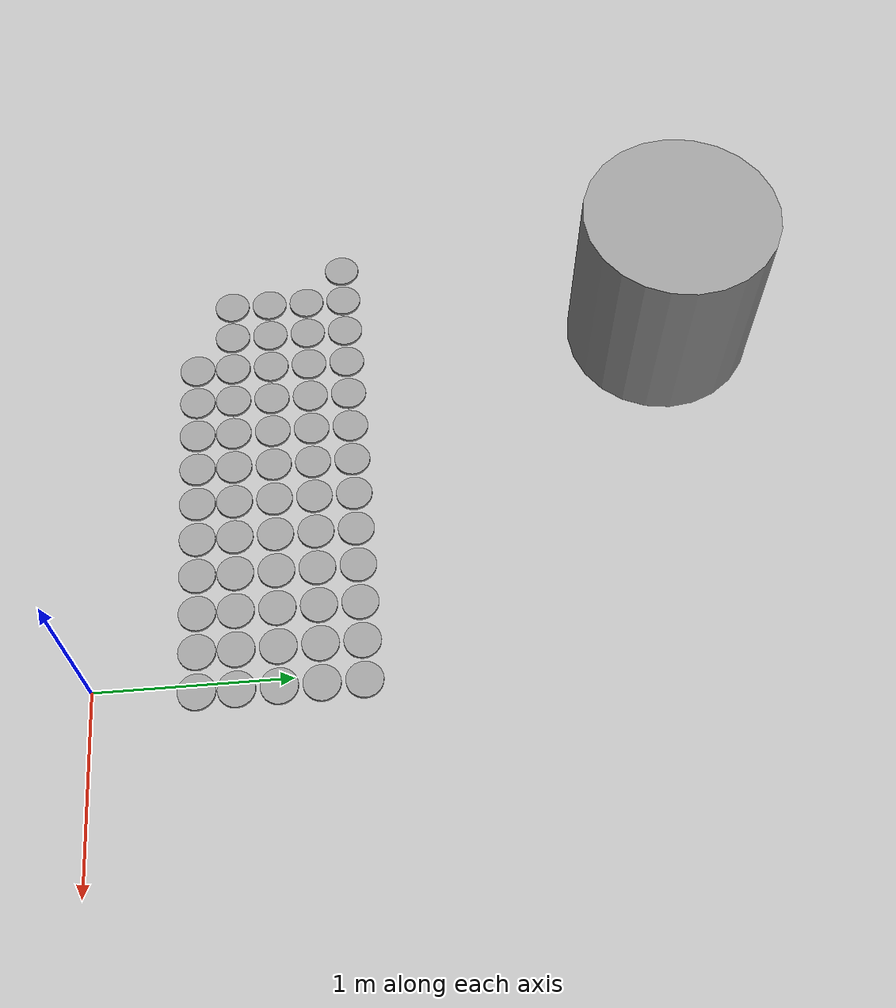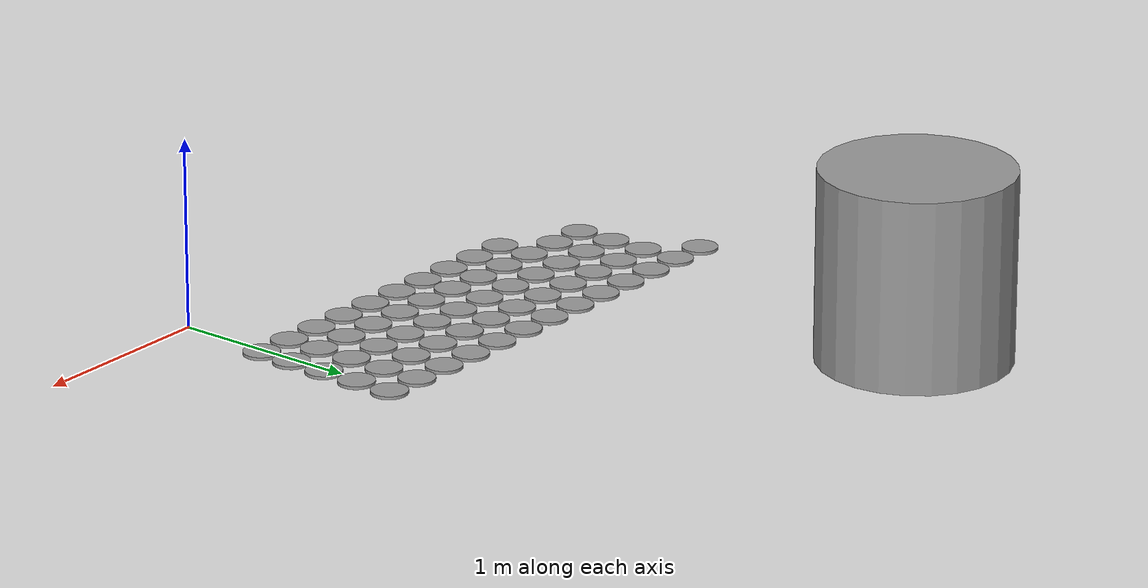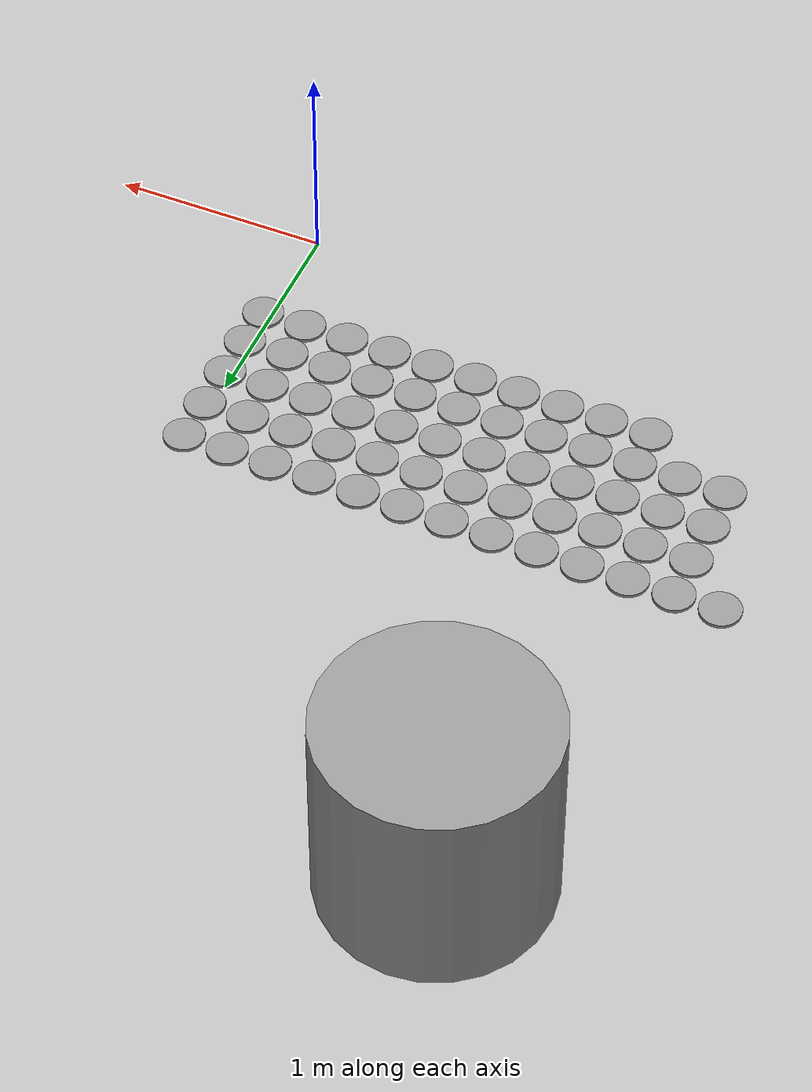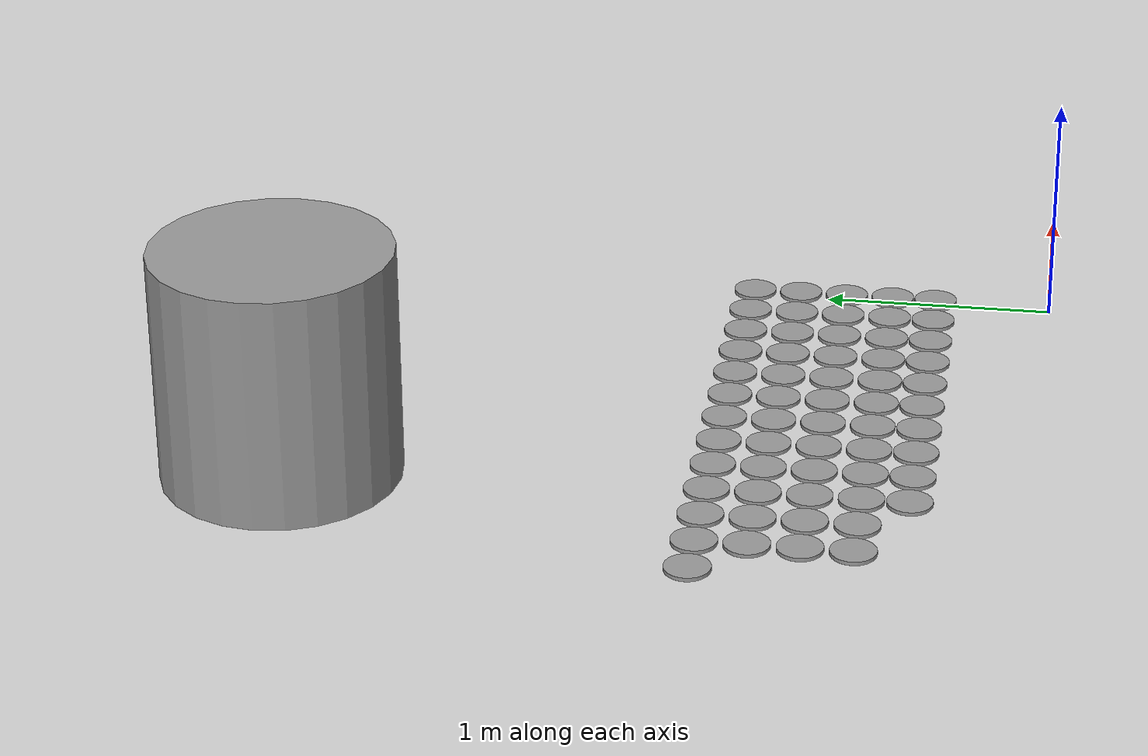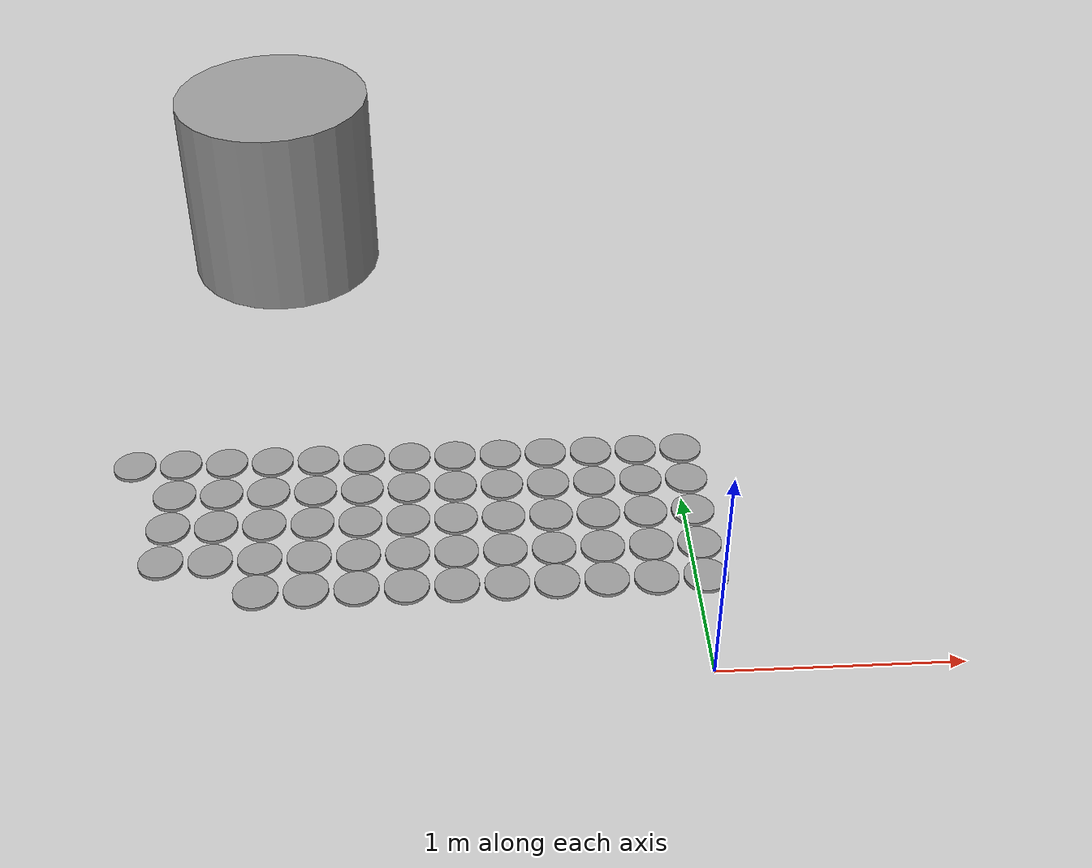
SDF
<sdf version="1.6">
 <world name="default">
  <model name="unit_cylinder_clone_64">
   <pose>-2.48 1.34 0.008117 0 -0 0</pose>
   <link name="link">
    <inertial>
     <mass>1</mass>
     <inertia><ixx>0.145833</ixx><ixy>0</ixy><ixz>0</ixz><iyy>0.145833</iyy><iyz>0</iyz><izz>0.125</izz></inertia>
    </inertial>
    <collision name="collision">
     <geometry><cylinder><radius>0.0950718</radius><length>0.0162339</length></cylinder></geometry>
     <max_contacts>5</max_contacts>
    </collision>
    <visual name="visual">
     <geometry><cylinder><radius>0.0950718</radius><length>0.0162339</length></cylinder></geometry>
     <material>
      <script><name>Gazebo/Grey</name><uri>file://media/materials/scripts/gazebo.material</uri></script>
     </material>
    </visual>
   </link>
  </model>
  <model name="unit_cylinder_clone_66">
   <pose>-2.27 0.71 0.008117 0 -0 0</pose>
   <link name="link">
    <inertial>
     <mass>1</mass>
     <inertia><ixx>0.145833</ixx><ixy>0</ixy><ixz>0</ixz><iyy>0.145833</iyy><iyz>0</iyz><izz>0.125</izz></inertia>
    </inertial>
    <collision name="collision">
     <geometry><cylinder><radius>0.0950718</radius><length>0.0162339</length></cylinder></geometry>
     <max_contacts>5</max_contacts>
    </collision>
    <visual name="visual">
     <geometry><cylinder><radius>0.0950718</radius><length>0.0162339</length></cylinder></geometry>
     <material>
      <script><name>Gazebo/Grey</name><uri>file://media/materials/scripts/gazebo.material</uri></script>
     </material>
    </visual>
   </link>
  </model>
  <model name="unit_cylinder_clone_67">
   <pose>-2.27 0.92 0.008117 0 -0 0</pose>
   <link name="link">
    <inertial>
     <mass>1</mass>
     <inertia><ixx>0.145833</ixx><ixy>0</ixy><ixz>0</ixz><iyy>0.145833</iyy><iyz>0</iyz><izz>0.125</izz></inertia>
    </inertial>
    <collision name="collision">
     <geometry><cylinder><radius>0.0950718</radius><length>0.0162339</length></cylinder></geometry>
     <max_contacts>5</max_contacts>
    </collision>
    <visual name="visual">
     <geometry><cylinder><radius>0.0950718</radius><length>0.0162339</length></cylinder></geometry>
     <material>
      <script><name>Gazebo/Grey</name><uri>file://media/materials/scripts/gazebo.material</uri></script>
     </material>
    </visual>
   </link>
  </model>
  <model name="unit_cylinder_clone_68">
   <pose>-2.27 1.13 0.008117 0 -0 0</pose>
   <link name="link">
    <inertial>
     <mass>1</mass>
     <inertia><ixx>0.145833</ixx><ixy>0</ixy><ixz>0</ixz><iyy>0.145833</iyy><iyz>0</iyz><izz>0.125</izz></inertia>
    </inertial>
    <collision name="collision">
     <geometry><cylinder><radius>0.0950718</radius><length>0.0162339</length></cylinder></geometry>
     <max_contacts>5</max_contacts>
    </collision>
    <visual name="visual">
     <geometry><cylinder><radius>0.0950718</radius><length>0.0162339</length></cylinder></geometry>
     <material>
      <script><name>Gazebo/Grey</name><uri>file://media/materials/scripts/gazebo.material</uri></script>
     </material>
    </visual>
   </link>
  </model>
  <model name="unit_cylinder_clone_69">
   <pose>-2.27 1.34 0.008117 0 -0 0</pose>
   <link name="link">
    <inertial>
     <mass>1</mass>
     <inertia><ixx>0.145833</ixx><ixy>0</ixy><ixz>0</ixz><iyy>0.145833</iyy><iyz>0</iyz><izz>0.125</izz></inertia>
    </inertial>
    <collision name="collision">
     <geometry><cylinder><radius>0.0950718</radius><length>0.0162339</length></cylinder></geometry>
     <max_contacts>5</max_contacts>
    </collision>
    <visual name="visual">
     <geometry><cylinder><radius>0.0950718</radius><length>0.0162339</length></cylinder></geometry>
     <material>
      <script><name>Gazebo/Grey</name><uri>file://media/materials/scripts/gazebo.material</uri></script>
     </material>
    </visual>
   </link>
  </model>
  <model name="unit_cylinder_clone_71">
   <pose>-2.06 0.71 0.008117 0 -0 0</pose>
   <link name="link">
    <inertial>
     <mass>1</mass>
     <inertia><ixx>0.145833</ixx><ixy>0</ixy><ixz>0</ixz><iyy>0.145833</iyy><iyz>0</iyz><izz>0.125</izz></inertia>
    </inertial>
    <collision name="collision">
     <geometry><cylinder><radius>0.0950718</radius><length>0.0162339</length></cylinder></geometry>
     <max_contacts>5</max_contacts>
    </collision>
    <visual name="visual">
     <geometry><cylinder><radius>0.0950718</radius><length>0.0162339</length></cylinder></geometry>
     <material>
      <script><name>Gazebo/Grey</name><uri>file://media/materials/scripts/gazebo.material</uri></script>
     </material>
    </visual>
   </link>
  </model>
  <model name="unit_cylinder_clone_72">
   <pose>-2.06 0.92 0.008117 0 -0 0</pose>
   <link name="link">
    <inertial>
     <mass>1</mass>
     <inertia><ixx>0.145833</ixx><ixy>0</ixy><ixz>0</ixz><iyy>0.145833</iyy><iyz>0</iyz><izz>0.125</izz></inertia>
    </inertial>
    <collision name="collision">
     <geometry><cylinder><radius>0.0950718</radius><length>0.0162339</length></cylinder></geometry>
     <max_contacts>5</max_contacts>
    </collision>
    <visual name="visual">
     <geometry><cylinder><radius>0.0950718</radius><length>0.0162339</length></cylinder></geometry>
     <material>
      <script><name>Gazebo/Grey</name><uri>file://media/materials/scripts/gazebo.material</uri></script>
     </material>
    </visual>
   </link>
  </model>
  <model name="unit_cylinder_clone_73">
   <pose>-2.06 1.13 0.008117 0 -0 0</pose>
   <link name="link">
    <inertial>
     <mass>1</mass>
     <inertia><ixx>0.145833</ixx><ixy>0</ixy><ixz>0</ixz><iyy>0.145833</iyy><iyz>0</iyz><izz>0.125</izz></inertia>
    </inertial>
    <collision name="collision">
     <geometry><cylinder><radius>0.0950718</radius><length>0.0162339</length></cylinder></geometry>
     <max_contacts>5</max_contacts>
    </collision>
    <visual name="visual">
     <geometry><cylinder><radius>0.0950718</radius><length>0.0162339</length></cylinder></geometry>
     <material>
      <script><name>Gazebo/Grey</name><uri>file://media/materials/scripts/gazebo.material</uri></script>
     </material>
    </visual>
   </link>
  </model>
  <model name="unit_cylinder_clone_74">
   <pose>-2.06 1.34 0.008117 0 -0 0</pose>
   <link name="link">
    <inertial>
     <mass>1</mass>
     <inertia><ixx>0.145833</ixx><ixy>0</ixy><ixz>0</ixz><iyy>0.145833</iyy><iyz>0</iyz><izz>0.125</izz></inertia>
    </inertial>
    <collision name="collision">
     <geometry><cylinder><radius>0.0950718</radius><length>0.0162339</length></cylinder></geometry>
     <max_contacts>5</max_contacts>
    </collision>
    <visual name="visual">
     <geometry><cylinder><radius>0.0950718</radius><length>0.0162339</length></cylinder></geometry>
     <material>
      <script><name>Gazebo/Grey</name><uri>file://media/materials/scripts/gazebo.material</uri></script>
     </material>
    </visual>
   </link>
  </model>
  <model name="unit_cylinder_clone_75">
   <pose>-1.85 0.515077 0.008117 0 -0 0</pose>
   <link name="link">
    <inertial>
     <mass>1</mass>
     <inertia><ixx>0.145833</ixx><ixy>0</ixy><ixz>0</ixz><iyy>0.145833</iyy><iyz>0</iyz><izz>0.125</izz></inertia>
    </inertial>
    <collision name="collision">
     <geometry><cylinder><radius>0.0950718</radius><length>0.0162339</length></cylinder></geometry>
     <max_contacts>5</max_contacts>
    </collision>
    <visual name="visual">
     <geometry><cylinder><radius>0.0950718</radius><length>0.0162339</length></cylinder></geometry>
     <material>
      <script><name>Gazebo/Grey</name><uri>file://media/materials/scripts/gazebo.material</uri></script>
     </material>
    </visual>
   </link>
  </model>
  <model name="unit_cylinder_clone_76">
   <pose>-1.85 0.71 0.008117 0 -0 0</pose>
   <link name="link">
    <inertial>
     <mass>1</mass>
     <inertia><ixx>0.145833</ixx><ixy>0</ixy><ixz>0</ixz><iyy>0.145833</iyy><iyz>0</iyz><izz>0.125</izz></inertia>
    </inertial>
    <collision name="collision">
     <geometry><cylinder><radius>0.0950718</radius><length>0.0162339</length></cylinder></geometry>
     <max_contacts>5</max_contacts>
    </collision>
    <visual name="visual">
     <geometry><cylinder><radius>0.0950718</radius><length>0.0162339</length></cylinder></geometry>
     <material>
      <script><name>Gazebo/Grey</name><uri>file://media/materials/scripts/gazebo.material</uri></script>
     </material>
    </visual>
   </link>
  </model>
  <model name="unit_cylinder_clone_77">
   <pose>-1.85 0.92 0.008117 0 -0 0</pose>
   <link name="link">
    <inertial>
     <mass>1</mass>
     <inertia><ixx>0.145833</ixx><ixy>0</ixy><ixz>0</ixz><iyy>0.145833</iyy><iyz>0</iyz><izz>0.125</izz></inertia>
    </inertial>
    <collision name="collision">
     <geometry><cylinder><radius>0.0950718</radius><length>0.0162339</length></cylinder></geometry>
     <max_contacts>5</max_contacts>
    </collision>
    <visual name="visual">
     <geometry><cylinder><radius>0.0950718</radius><length>0.0162339</length></cylinder></geometry>
     <material>
      <script><name>Gazebo/Grey</name><uri>file://media/materials/scripts/gazebo.material</uri></script>
     </material>
    </visual>
   </link>
  </model>
  <model name="unit_cylinder_clone_78">
   <pose>-1.85 1.13 0.008117 0 -0 0</pose>
   <link name="link">
    <inertial>
     <mass>1</mass>
     <inertia><ixx>0.145833</ixx><ixy>0</ixy><ixz>0</ixz><iyy>0.145833</iyy><iyz>0</iyz><izz>0.125</izz></inertia>
    </inertial>
    <collision name="collision">
     <geometry><cylinder><radius>0.0950718</radius><length>0.0162339</length></cylinder></geometry>
     <max_contacts>5</max_contacts>
    </collision>
    <visual name="visual">
     <geometry><cylinder><radius>0.0950718</radius><length>0.0162339</length></cylinder></geometry>
     <material>
      <script><name>Gazebo/Grey</name><uri>file://media/materials/scripts/gazebo.material</uri></script>
     </material>
    </visual>
   </link>
  </model>
  <model name="unit_cylinder_clone_79">
   <pose>-1.85 1.34 0.008117 0 -0 0</pose>
   <link name="link">
    <inertial>
     <mass>1</mass>
     <inertia><ixx>0.145833</ixx><ixy>0</ixy><ixz>0</ixz><iyy>0.145833</iyy><iyz>0</iyz><izz>0.125</izz></inertia>
    </inertial>
    <collision name="collision">
     <geometry><cylinder><radius>0.0950718</radius><length>0.0162339</length></cylinder></geometry>
     <max_contacts>5</max_contacts>
    </collision>
    <visual name="visual">
     <geometry><cylinder><radius>0.0950718</radius><length>0.0162339</length></cylinder></geometry>
     <material>
      <script><name>Gazebo/Grey</name><uri>file://media/materials/scripts/gazebo.material</uri></script>
     </material>
    </visual>
   </link>
  </model>
  <model name="unit_cylinder_clone_80">
   <pose>-1.64 0.515077 0.008117 0 -0 0</pose>
   <link name="link">
    <inertial>
     <mass>1</mass>
     <inertia><ixx>0.145833</ixx><ixy>0</ixy><ixz>0</ixz><iyy>0.145833</iyy><iyz>0</iyz><izz>0.125</izz></inertia>
    </inertial>
    <collision name="collision">
     <geometry><cylinder><radius>0.0950718</radius><length>0.0162339</length></cylinder></geometry>
     <max_contacts>5</max_contacts>
    </collision>
    <visual name="visual">
     <geometry><cylinder><radius>0.0950718</radius><length>0.0162339</length></cylinder></geometry>
     <material>
      <script><name>Gazebo/Grey</name><uri>file://media/materials/scripts/gazebo.material</uri></script>
     </material>
    </visual>
   </link>
  </model>
  <model name="unit_cylinder_clone_81">
   <pose>-1.64 0.71 0.008117 0 -0 0</pose>
   <link name="link">
    <inertial>
     <mass>1</mass>
     <inertia><ixx>0.145833</ixx><ixy>0</ixy><ixz>0</ixz><iyy>0.145833</iyy><iyz>0</iyz><izz>0.125</izz></inertia>
    </inertial>
    <collision name="collision">
     <geometry><cylinder><radius>0.0950718</radius><length>0.0162339</length></cylinder></geometry>
     <max_contacts>5</max_contacts>
    </collision>
    <visual name="visual">
     <geometry><cylinder><radius>0.0950718</radius><length>0.0162339</length></cylinder></geometry>
     <material>
      <script><name>Gazebo/Grey</name><uri>file://media/materials/scripts/gazebo.material</uri></script>
     </material>
    </visual>
   </link>
  </model>
  <model name="unit_cylinder_clone_82">
   <pose>-1.64 0.92 0.008117 0 -0 0</pose>
   <link name="link">
    <inertial>
     <mass>1</mass>
     <inertia><ixx>0.145833</ixx><ixy>0</ixy><ixz>0</ixz><iyy>0.145833</iyy><iyz>0</iyz><izz>0.125</izz></inertia>
    </inertial>
    <collision name="collision">
     <geometry><cylinder><radius>0.0950718</radius><length>0.0162339</length></cylinder></geometry>
     <max_contacts>5</max_contacts>
    </collision>
    <visual name="visual">
     <geometry><cylinder><radius>0.0950718</radius><length>0.0162339</length></cylinder></geometry>
     <material>
      <script><name>Gazebo/Grey</name><uri>file://media/materials/scripts/gazebo.material</uri></script>
     </material>
    </visual>
   </link>
  </model>
  <model name="unit_cylinder_clone_83">
   <pose>-1.64 1.13 0.008117 0 -0 0</pose>
   <link name="link">
    <inertial>
     <mass>1</mass>
     <inertia><ixx>0.145833</ixx><ixy>0</ixy><ixz>0</ixz><iyy>0.145833</iyy><iyz>0</iyz><izz>0.125</izz></inertia>
    </inertial>
    <collision name="collision">
     <geometry><cylinder><radius>0.0950718</radius><length>0.0162339</length></cylinder></geometry>
     <max_contacts>5</max_contacts>
    </collision>
    <visual name="visual">
     <geometry><cylinder><radius>0.0950718</radius><length>0.0162339</length></cylinder></geometry>
     <material>
      <script><name>Gazebo/Grey</name><uri>file://media/materials/scripts/gazebo.material</uri></script>
     </material>
    </visual>
   </link>
  </model>
  <model name="unit_cylinder_clone_84">
   <pose>-1.64 1.34 0.008117 0 -0 0</pose>
   <link name="link">
    <inertial>
     <mass>1</mass>
     <inertia><ixx>0.145833</ixx><ixy>0</ixy><ixz>0</ixz><iyy>0.145833</iyy><iyz>0</iyz><izz>0.125</izz></inertia>
    </inertial>
    <collision name="collision">
     <geometry><cylinder><radius>0.0950718</radius><length>0.0162339</length></cylinder></geometry>
     <max_contacts>5</max_contacts>
    </collision>
    <visual name="visual">
     <geometry><cylinder><radius>0.0950718</radius><length>0.0162339</length></cylinder></geometry>
     <material>
      <script><name>Gazebo/Grey</name><uri>file://media/materials/scripts/gazebo.material</uri></script>
     </material>
    </visual>
   </link>
  </model>
  <model name="unit_cylinder_clone_85">
   <pose>-1.43 0.515077 0.008117 0 -0 0</pose>
   <link name="link">
    <inertial>
     <mass>1</mass>
     <inertia><ixx>0.145833</ixx><ixy>0</ixy><ixz>0</ixz><iyy>0.145833</iyy><iyz>0</iyz><izz>0.125</izz></inertia>
    </inertial>
    <collision name="collision">
     <geometry><cylinder><radius>0.0950718</radius><length>0.0162339</length></cylinder></geometry>
     <max_contacts>5</max_contacts>
    </collision>
    <visual name="visual">
     <geometry><cylinder><radius>0.0950718</radius><length>0.0162339</length></cylinder></geometry>
     <material>
      <script><name>Gazebo/Grey</name><uri>file://media/materials/scripts/gazebo.material</uri></script>
     </material>
    </visual>
   </link>
  </model>
  <model name="unit_cylinder_clone_86">
   <pose>-1.43 0.71 0.008117 0 -0 0</pose>
   <link name="link">
    <inertial>
     <mass>1</mass>
     <inertia><ixx>0.145833</ixx><ixy>0</ixy><ixz>0</ixz><iyy>0.145833</iyy><iyz>0</iyz><izz>0.125</izz></inertia>
    </inertial>
    <collision name="collision">
     <geometry><cylinder><radius>0.0950718</radius><length>0.0162339</length></cylinder></geometry>
     <max_contacts>5</max_contacts>
    </collision>
    <visual name="visual">
     <geometry><cylinder><radius>0.0950718</radius><length>0.0162339</length></cylinder></geometry>
     <material>
      <script><name>Gazebo/Grey</name><uri>file://media/materials/scripts/gazebo.material</uri></script>
     </material>
    </visual>
   </link>
  </model>
  <model name="unit_cylinder_clone_87">
   <pose>-1.43 0.92 0.008117 0 -0 0</pose>
   <link name="link">
    <inertial>
     <mass>1</mass>
     <inertia><ixx>0.145833</ixx><ixy>0</ixy><ixz>0</ixz><iyy>0.145833</iyy><iyz>0</iyz><izz>0.125</izz></inertia>
    </inertial>
    <collision name="collision">
     <geometry><cylinder><radius>0.0950718</radius><length>0.0162339</length></cylinder></geometry>
     <max_contacts>5</max_contacts>
    </collision>
    <visual name="visual">
     <geometry><cylinder><radius>0.0950718</radius><length>0.0162339</length></cylinder></geometry>
     <material>
      <script><name>Gazebo/Grey</name><uri>file://media/materials/scripts/gazebo.material</uri></script>
     </material>
    </visual>
   </link>
  </model>
  <model name="unit_cylinder_clone_88">
   <pose>-1.43 1.13 0.008117 0 -0 0</pose>
   <link name="link">
    <inertial>
     <mass>1</mass>
     <inertia><ixx>0.145833</ixx><ixy>0</ixy><ixz>0</ixz><iyy>0.145833</iyy><iyz>0</iyz><izz>0.125</izz></inertia>
    </inertial>
    <collision name="collision">
     <geometry><cylinder><radius>0.0950718</radius><length>0.0162339</length></cylinder></geometry>
     <max_contacts>5</max_contacts>
    </collision>
    <visual name="visual">
     <geometry><cylinder><radius>0.0950718</radius><length>0.0162339</length></cylinder></geometry>
     <material>
      <script><name>Gazebo/Grey</name><uri>file://media/materials/scripts/gazebo.material</uri></script>
     </material>
    </visual>
   </link>
  </model>
  <model name="unit_cylinder_clone_89">
   <pose>-1.43 1.34 0.008117 0 -0 0</pose>
   <link name="link">
    <inertial>
     <mass>1</mass>
     <inertia><ixx>0.145833</ixx><ixy>0</ixy><ixz>0</ixz><iyy>0.145833</iyy><iyz>0</iyz><izz>0.125</izz></inertia>
    </inertial>
    <collision name="collision">
     <geometry><cylinder><radius>0.0950718</radius><length>0.0162339</length></cylinder></geometry>
     <max_contacts>5</max_contacts>
    </collision>
    <visual name="visual">
     <geometry><cylinder><radius>0.0950718</radius><length>0.0162339</length></cylinder></geometry>
     <material>
      <script><name>Gazebo/Grey</name><uri>file://media/materials/scripts/gazebo.material</uri></script>
     </material>
    </visual>
   </link>
  </model>
  <model name="unit_cylinder_clone_90">
   <pose>-1.22 0.515077 0.008117 0 -0 0</pose>
   <link name="link">
    <inertial>
     <mass>1</mass>
     <inertia><ixx>0.145833</ixx><ixy>0</ixy><ixz>0</ixz><iyy>0.145833</iyy><iyz>0</iyz><izz>0.125</izz></inertia>
    </inertial>
    <collision name="collision">
     <geometry><cylinder><radius>0.0950718</radius><length>0.0162339</length></cylinder></geometry>
     <max_contacts>5</max_contacts>
    </collision>
    <visual name="visual">
     <geometry><cylinder><radius>0.0950718</radius><length>0.0162339</length></cylinder></geometry>
     <material>
      <script><name>Gazebo/Grey</name><uri>file://media/materials/scripts/gazebo.material</uri></script>
     </material>
    </visual>
   </link>
  </model>
  <model name="unit_cylinder_clone_91">
   <pose>-1.22 0.71 0.008117 0 -0 0</pose>
   <link name="link">
    <inertial>
     <mass>1</mass>
     <inertia><ixx>0.145833</ixx><ixy>0</ixy><ixz>0</ixz><iyy>0.145833</iyy><iyz>0</iyz><izz>0.125</izz></inertia>
    </inertial>
    <collision name="collision">
     <geometry><cylinder><radius>0.0950718</radius><length>0.0162339</length></cylinder></geometry>
     <max_contacts>5</max_contacts>
    </collision>
    <visual name="visual">
     <geometry><cylinder><radius>0.0950718</radius><length>0.0162339</length></cylinder></geometry>
     <material>
      <script><name>Gazebo/Grey</name><uri>file://media/materials/scripts/gazebo.material</uri></script>
     </material>
    </visual>
   </link>
  </model>
  <model name="unit_cylinder_clone_92">
   <pose>-1.22 0.92 0.008117 0 -0 0</pose>
   <link name="link">
    <inertial>
     <mass>1</mass>
     <inertia><ixx>0.145833</ixx><ixy>0</ixy><ixz>0</ixz><iyy>0.145833</iyy><iyz>0</iyz><izz>0.125</izz></inertia>
    </inertial>
    <collision name="collision">
     <geometry><cylinder><radius>0.0950718</radius><length>0.0162339</length></cylinder></geometry>
     <max_contacts>5</max_contacts>
    </collision>
    <visual name="visual">
     <geometry><cylinder><radius>0.0950718</radius><length>0.0162339</length></cylinder></geometry>
     <material>
      <script><name>Gazebo/Grey</name><uri>file://media/materials/scripts/gazebo.material</uri></script>
     </material>
    </visual>
   </link>
  </model>
  <model name="unit_cylinder_clone_93">
   <pose>-1.22 1.13 0.008117 0 -0 0</pose>
   <link name="link">
    <inertial>
     <mass>1</mass>
     <inertia><ixx>0.145833</ixx><ixy>0</ixy><ixz>0</ixz><iyy>0.145833</iyy><iyz>0</iyz><izz>0.125</izz></inertia>
    </inertial>
    <collision name="collision">
     <geometry><cylinder><radius>0.0950718</radius><length>0.0162339</length></cylinder></geometry>
     <max_contacts>5</max_contacts>
    </collision>
    <visual name="visual">
     <geometry><cylinder><radius>0.0950718</radius><length>0.0162339</length></cylinder></geometry>
     <material>
      <script><name>Gazebo/Grey</name><uri>file://media/materials/scripts/gazebo.material</uri></script>
     </material>
    </visual>
   </link>
  </model>
  <model name="unit_cylinder_clone_94">
   <pose>-1.22 1.34 0.008117 0 -0 0</pose>
   <link name="link">
    <inertial>
     <mass>1</mass>
     <inertia><ixx>0.145833</ixx><ixy>0</ixy><ixz>0</ixz><iyy>0.145833</iyy><iyz>0</iyz><izz>0.125</izz></inertia>
    </inertial>
    <collision name="collision">
     <geometry><cylinder><radius>0.0950718</radius><length>0.0162339</length></cylinder></geometry>
     <max_contacts>5</max_contacts>
    </collision>
    <visual name="visual">
     <geometry><cylinder><radius>0.0950718</radius><length>0.0162339</length></cylinder></geometry>
     <material>
      <script><name>Gazebo/Grey</name><uri>file://media/materials/scripts/gazebo.material</uri></script>
     </material>
    </visual>
   </link>
  </model>
  <model name="unit_cylinder_clone_95">
   <pose>-1.01 0.515077 0.008117 0 -0 0</pose>
   <link name="link">
    <inertial>
     <mass>1</mass>
     <inertia><ixx>0.145833</ixx><ixy>0</ixy><ixz>0</ixz><iyy>0.145833</iyy><iyz>0</iyz><izz>0.125</izz></inertia>
    </inertial>
    <collision name="collision">
     <geometry><cylinder><radius>0.0950718</radius><length>0.0162339</length></cylinder></geometry>
     <max_contacts>5</max_contacts>
    </collision>
    <visual name="visual">
     <geometry><cylinder><radius>0.0950718</radius><length>0.0162339</length></cylinder></geometry>
     <material>
      <script><name>Gazebo/Grey</name><uri>file://media/materials/scripts/gazebo.material</uri></script>
     </material>
    </visual>
   </link>
  </model>
  <model name="unit_cylinder_clone_96">
   <pose>-1.01 0.71 0.008117 0 -0 0</pose>
   <link name="link">
    <inertial>
     <mass>1</mass>
     <inertia><ixx>0.145833</ixx><ixy>0</ixy><ixz>0</ixz><iyy>0.145833</iyy><iyz>0</iyz><izz>0.125</izz></inertia>
    </inertial>
    <collision name="collision">
     <geometry><cylinder><radius>0.0950718</radius><length>0.0162339</length></cylinder></geometry>
     <max_contacts>5</max_contacts>
    </collision>
    <visual name="visual">
     <geometry><cylinder><radius>0.0950718</radius><length>0.0162339</length></cylinder></geometry>
     <material>
      <script><name>Gazebo/Grey</name><uri>file://media/materials/scripts/gazebo.material</uri></script>
     </material>
    </visual>
   </link>
  </model>
  <model name="unit_cylinder_clone_97">
   <pose>-1.01 0.92 0.008117 0 -0 0</pose>
   <link name="link">
    <inertial>
     <mass>1</mass>
     <inertia><ixx>0.145833</ixx><ixy>0</ixy><ixz>0</ixz><iyy>0.145833</iyy><iyz>0</iyz><izz>0.125</izz></inertia>
    </inertial>
    <collision name="collision">
     <geometry><cylinder><radius>0.0950718</radius><length>0.0162339</length></cylinder></geometry>
     <max_contacts>5</max_contacts>
    </collision>
    <visual name="visual">
     <geometry><cylinder><radius>0.0950718</radius><length>0.0162339</length></cylinder></geometry>
     <material>
      <script><name>Gazebo/Grey</name><uri>file://media/materials/scripts/gazebo.material</uri></script>
     </material>
    </visual>
   </link>
  </model>
  <model name="unit_cylinder_clone_98">
   <pose>-1.01 1.13 0.008117 0 -0 0</pose>
   <link name="link">
    <inertial>
     <mass>1</mass>
     <inertia><ixx>0.145833</ixx><ixy>0</ixy><ixz>0</ixz><iyy>0.145833</iyy><iyz>0</iyz><izz>0.125</izz></inertia>
    </inertial>
    <collision name="collision">
     <geometry><cylinder><radius>0.0950718</radius><length>0.0162339</length></cylinder></geometry>
     <max_contacts>5</max_contacts>
    </collision>
    <visual name="visual">
     <geometry><cylinder><radius>0.0950718</radius><length>0.0162339</length></cylinder></geometry>
     <material>
      <script><name>Gazebo/Grey</name><uri>file://media/materials/scripts/gazebo.material</uri></script>
     </material>
    </visual>
   </link>
  </model>
  <model name="unit_cylinder_clone_99">
   <pose>-1.01 1.34 0.008117 0 -0 0</pose>
   <link name="link">
    <inertial>
     <mass>1</mass>
     <inertia><ixx>0.145833</ixx><ixy>0</ixy><ixz>0</ixz><iyy>0.145833</iyy><iyz>0</iyz><izz>0.125</izz></inertia>
    </inertial>
    <collision name="collision">
     <geometry><cylinder><radius>0.0950718</radius><length>0.0162339</length></cylinder></geometry>
     <max_contacts>5</max_contacts>
    </collision>
    <visual name="visual">
     <geometry><cylinder><radius>0.0950718</radius><length>0.0162339</length></cylinder></geometry>
     <material>
      <script><name>Gazebo/Grey</name><uri>file://media/materials/scripts/gazebo.material</uri></script>
     </material>
    </visual>
   </link>
  </model>
  <model name="unit_cylinder_clone_100">
   <pose>-0.8 0.515077 0.008117 0 -0 0</pose>
   <link name="link">
    <inertial>
     <mass>1</mass>
     <inertia><ixx>0.145833</ixx><ixy>0</ixy><ixz>0</ixz><iyy>0.145833</iyy><iyz>0</iyz><izz>0.125</izz></inertia>
    </inertial>
    <collision name="collision">
     <geometry><cylinder><radius>0.0950718</radius><length>0.0162339</length></cylinder></geometry>
     <max_contacts>5</max_contacts>
    </collision>
    <visual name="visual">
     <geometry><cylinder><radius>0.0950718</radius><length>0.0162339</length></cylinder></geometry>
     <material>
      <script><name>Gazebo/Grey</name><uri>file://media/materials/scripts/gazebo.material</uri></script>
     </material>
    </visual>
   </link>
  </model>
  <model name="unit_cylinder_clone_101">
   <pose>-0.8 0.71 0.008117 0 -0 0</pose>
   <link name="link">
    <inertial>
     <mass>1</mass>
     <inertia><ixx>0.145833</ixx><ixy>0</ixy><ixz>0</ixz><iyy>0.145833</iyy><iyz>0</iyz><izz>0.125</izz></inertia>
    </inertial>
    <collision name="collision">
     <geometry><cylinder><radius>0.0950718</radius><length>0.0162339</length></cylinder></geometry>
     <max_contacts>5</max_contacts>
    </collision>
    <visual name="visual">
     <geometry><cylinder><radius>0.0950718</radius><length>0.0162339</length></cylinder></geometry>
     <material>
      <script><name>Gazebo/Grey</name><uri>file://media/materials/scripts/gazebo.material</uri></script>
     </material>
    </visual>
   </link>
  </model>
  <model name="unit_cylinder_clone_102">
   <pose>-0.8 0.92 0.008117 0 -0 0</pose>
   <link name="link">
    <inertial>
     <mass>1</mass>
     <inertia><ixx>0.145833</ixx><ixy>0</ixy><ixz>0</ixz><iyy>0.145833</iyy><iyz>0</iyz><izz>0.125</izz></inertia>
    </inertial>
    <collision name="collision">
     <geometry><cylinder><radius>0.0950718</radius><length>0.0162339</length></cylinder></geometry>
     <max_contacts>5</max_contacts>
    </collision>
    <visual name="visual">
     <geometry><cylinder><radius>0.0950718</radius><length>0.0162339</length></cylinder></geometry>
     <material>
      <script><name>Gazebo/Grey</name><uri>file://media/materials/scripts/gazebo.material</uri></script>
     </material>
    </visual>
   </link>
  </model>
  <model name="unit_cylinder_clone_103">
   <pose>-0.8 1.13 0.008117 0 -0 0</pose>
   <link name="link">
    <inertial>
     <mass>1</mass>
     <inertia><ixx>0.145833</ixx><ixy>0</ixy><ixz>0</ixz><iyy>0.145833</iyy><iyz>0</iyz><izz>0.125</izz></inertia>
    </inertial>
    <collision name="collision">
     <geometry><cylinder><radius>0.0950718</radius><length>0.0162339</length></cylinder></geometry>
     <max_contacts>5</max_contacts>
    </collision>
    <visual name="visual">
     <geometry><cylinder><radius>0.0950718</radius><length>0.0162339</length></cylinder></geometry>
     <material>
      <script><name>Gazebo/Grey</name><uri>file://media/materials/scripts/gazebo.material</uri></script>
     </material>
    </visual>
   </link>
  </model>
  <model name="unit_cylinder_clone_104">
   <pose>-0.8 1.34 0.008117 0 -0 0</pose>
   <link name="link">
    <inertial>
     <mass>1</mass>
     <inertia><ixx>0.145833</ixx><ixy>0</ixy><ixz>0</ixz><iyy>0.145833</iyy><iyz>0</iyz><izz>0.125</izz></inertia>
    </inertial>
    <collision name="collision">
     <geometry><cylinder><radius>0.0950718</radius><length>0.0162339</length></cylinder></geometry>
     <max_contacts>5</max_contacts>
    </collision>
    <visual name="visual">
     <geometry><cylinder><radius>0.0950718</radius><length>0.0162339</length></cylinder></geometry>
     <material>
      <script><name>Gazebo/Grey</name><uri>file://media/materials/scripts/gazebo.material</uri></script>
     </material>
    </visual>
   </link>
  </model>
  <model name="unit_cylinder_clone_105">
   <pose>-0.59 0.515077 0.008117 0 -0 0</pose>
   <link name="link">
    <inertial>
     <mass>1</mass>
     <inertia><ixx>0.145833</ixx><ixy>0</ixy><ixz>0</ixz><iyy>0.145833</iyy><iyz>0</iyz><izz>0.125</izz></inertia>
    </inertial>
    <collision name="collision">
     <geometry><cylinder><radius>0.0950718</radius><length>0.0162339</length></cylinder></geometry>
     <max_contacts>5</max_contacts>
    </collision>
    <visual name="visual">
     <geometry><cylinder><radius>0.0950718</radius><length>0.0162339</length></cylinder></geometry>
     <material>
      <script><name>Gazebo/Grey</name><uri>file://media/materials/scripts/gazebo.material</uri></script>
     </material>
    </visual>
   </link>
  </model>
  <model name="unit_cylinder_clone_106">
   <pose>-0.59 0.71 0.008117 0 -0 0</pose>
   <link name="link">
    <inertial>
     <mass>1</mass>
     <inertia><ixx>0.145833</ixx><ixy>0</ixy><ixz>0</ixz><iyy>0.145833</iyy><iyz>0</iyz><izz>0.125</izz></inertia>
    </inertial>
    <collision name="collision">
     <geometry><cylinder><radius>0.0950718</radius><length>0.0162339</length></cylinder></geometry>
     <max_contacts>5</max_contacts>
    </collision>
    <visual name="visual">
     <geometry><cylinder><radius>0.0950718</radius><length>0.0162339</length></cylinder></geometry>
     <material>
      <script><name>Gazebo/Grey</name><uri>file://media/materials/scripts/gazebo.material</uri></script>
     </material>
    </visual>
   </link>
  </model>
  <model name="unit_cylinder_clone_107">
   <pose>-0.59 0.92 0.008117 0 -0 0</pose>
   <link name="link">
    <inertial>
     <mass>1</mass>
     <inertia><ixx>0.145833</ixx><ixy>0</ixy><ixz>0</ixz><iyy>0.145833</iyy><iyz>0</iyz><izz>0.125</izz></inertia>
    </inertial>
    <collision name="collision">
     <geometry><cylinder><radius>0.0950718</radius><length>0.0162339</length></cylinder></geometry>
     <max_contacts>5</max_contacts>
    </collision>
    <visual name="visual">
     <geometry><cylinder><radius>0.0950718</radius><length>0.0162339</length></cylinder></geometry>
     <material>
      <script><name>Gazebo/Grey</name><uri>file://media/materials/scripts/gazebo.material</uri></script>
     </material>
    </visual>
   </link>
  </model>
  <model name="unit_cylinder_clone_108">
   <pose>-0.59 1.13 0.008117 0 -0 0</pose>
   <link name="link">
    <inertial>
     <mass>1</mass>
     <inertia><ixx>0.145833</ixx><ixy>0</ixy><ixz>0</ixz><iyy>0.145833</iyy><iyz>0</iyz><izz>0.125</izz></inertia>
    </inertial>
    <collision name="collision">
     <geometry><cylinder><radius>0.0950718</radius><length>0.0162339</length></cylinder></geometry>
     <max_contacts>5</max_contacts>
    </collision>
    <visual name="visual">
     <geometry><cylinder><radius>0.0950718</radius><length>0.0162339</length></cylinder></geometry>
     <material>
      <script><name>Gazebo/Grey</name><uri>file://media/materials/scripts/gazebo.material</uri></script>
     </material>
    </visual>
   </link>
  </model>
  <model name="unit_cylinder_clone_109">
   <pose>-0.59 1.34 0.008117 0 -0 0</pose>
   <link name="link">
    <inertial>
     <mass>1</mass>
     <inertia><ixx>0.145833</ixx><ixy>0</ixy><ixz>0</ixz><iyy>0.145833</iyy><iyz>0</iyz><izz>0.125</izz></inertia>
    </inertial>
    <collision name="collision">
     <geometry><cylinder><radius>0.0950718</radius><length>0.0162339</length></cylinder></geometry>
     <max_contacts>5</max_contacts>
    </collision>
    <visual name="visual">
     <geometry><cylinder><radius>0.0950718</radius><length>0.0162339</length></cylinder></geometry>
     <material>
      <script><name>Gazebo/Grey</name><uri>file://media/materials/scripts/gazebo.material</uri></script>
     </material>
    </visual>
   </link>
  </model>
  <model name="unit_cylinder_clone_110">
   <pose>-0.38 0.515077 0.008117 0 -0 0</pose>
   <link name="link">
    <inertial>
     <mass>1</mass>
     <inertia><ixx>0.145833</ixx><ixy>0</ixy><ixz>0</ixz><iyy>0.145833</iyy><iyz>0</iyz><izz>0.125</izz></inertia>
    </inertial>
    <collision name="collision">
     <geometry><cylinder><radius>0.0950718</radius><length>0.0162339</length></cylinder></geometry>
     <max_contacts>5</max_contacts>
    </collision>
    <visual name="visual">
     <geometry><cylinder><radius>0.0950718</radius><length>0.0162339</length></cylinder></geometry>
     <material>
      <script><name>Gazebo/Grey</name><uri>file://media/materials/scripts/gazebo.material</uri></script>
     </material>
    </visual>
   </link>
  </model>
  <model name="unit_cylinder_clone_111">
   <pose>-0.38 0.71 0.008117 0 -0 0</pose>
   <link name="link">
    <inertial>
     <mass>1</mass>
     <inertia><ixx>0.145833</ixx><ixy>0</ixy><ixz>0</ixz><iyy>0.145833</iyy><iyz>0</iyz><izz>0.125</izz></inertia>
    </inertial>
    <collision name="collision">
     <geometry><cylinder><radius>0.0950718</radius><length>0.0162339</length></cylinder></geometry>
     <max_contacts>5</max_contacts>
    </collision>
    <visual name="visual">
     <geometry><cylinder><radius>0.0950718</radius><length>0.0162339</length></cylinder></geometry>
     <material>
      <script><name>Gazebo/Grey</name><uri>file://media/materials/scripts/gazebo.material</uri></script>
     </material>
    </visual>
   </link>
  </model>
  <model name="unit_cylinder_clone_112">
   <pose>-0.38 0.92 0.008117 0 -0 0</pose>
   <link name="link">
    <inertial>
     <mass>1</mass>
     <inertia><ixx>0.145833</ixx><ixy>0</ixy><ixz>0</ixz><iyy>0.145833</iyy><iyz>0</iyz><izz>0.125</izz></inertia>
    </inertial>
    <collision name="collision">
     <geometry><cylinder><radius>0.0950718</radius><length>0.0162339</length></cylinder></geometry>
     <max_contacts>5</max_contacts>
    </collision>
    <visual name="visual">
     <geometry><cylinder><radius>0.0950718</radius><length>0.0162339</length></cylinder></geometry>
     <material>
      <script><name>Gazebo/Grey</name><uri>file://media/materials/scripts/gazebo.material</uri></script>
     </material>
    </visual>
   </link>
  </model>
  <model name="unit_cylinder_clone_113">
   <pose>-0.38 1.13 0.008117 0 -0 0</pose>
   <link name="link">
    <inertial>
     <mass>1</mass>
     <inertia><ixx>0.145833</ixx><ixy>0</ixy><ixz>0</ixz><iyy>0.145833</iyy><iyz>0</iyz><izz>0.125</izz></inertia>
    </inertial>
    <collision name="collision">
     <geometry><cylinder><radius>0.0950718</radius><length>0.0162339</length></cylinder></geometry>
     <max_contacts>5</max_contacts>
    </collision>
    <visual name="visual">
     <geometry><cylinder><radius>0.0950718</radius><length>0.0162339</length></cylinder></geometry>
     <material>
      <script><name>Gazebo/Grey</name><uri>file://media/materials/scripts/gazebo.material</uri></script>
     </material>
    </visual>
   </link>
  </model>
  <model name="unit_cylinder_clone_114">
   <pose>-0.38 1.34 0.008117 0 -0 0</pose>
   <link name="link">
    <inertial>
     <mass>1</mass>
     <inertia><ixx>0.145833</ixx><ixy>0</ixy><ixz>0</ixz><iyy>0.145833</iyy><iyz>0</iyz><izz>0.125</izz></inertia>
    </inertial>
    <collision name="collision">
     <geometry><cylinder><radius>0.0950718</radius><length>0.0162339</length></cylinder></geometry>
     <max_contacts>5</max_contacts>
    </collision>
    <visual name="visual">
     <geometry><cylinder><radius>0.0950718</radius><length>0.0162339</length></cylinder></geometry>
     <material>
      <script><name>Gazebo/Grey</name><uri>file://media/materials/scripts/gazebo.material</uri></script>
     </material>
    </visual>
   </link>
  </model>
  <model name="unit_cylinder_clone_115">
   <pose>-0.17 0.515077 0.008117 0 -0 0</pose>
   <link name="link">
    <inertial>
     <mass>1</mass>
     <inertia><ixx>0.145833</ixx><ixy>0</ixy><ixz>0</ixz><iyy>0.145833</iyy><iyz>0</iyz><izz>0.125</izz></inertia>
    </inertial>
    <collision name="collision">
     <geometry><cylinder><radius>0.0950718</radius><length>0.0162339</length></cylinder></geometry>
     <max_contacts>5</max_contacts>
    </collision>
    <visual name="visual">
     <geometry><cylinder><radius>0.0950718</radius><length>0.0162339</length></cylinder></geometry>
     <material>
      <script><name>Gazebo/Grey</name><uri>file://media/materials/scripts/gazebo.material</uri></script>
     </material>
    </visual>
   </link>
  </model>
  <model name="unit_cylinder_clone_116">
   <pose>-0.17 0.71 0.008117 0 -0 0</pose>
   <link name="link">
    <inertial>
     <mass>1</mass>
     <inertia><ixx>0.145833</ixx><ixy>0</ixy><ixz>0</ixz><iyy>0.145833</iyy><iyz>0</iyz><izz>0.125</izz></inertia>
    </inertial>
    <collision name="collision">
     <geometry><cylinder><radius>0.0950718</radius><length>0.0162339</length></cylinder></geometry>
     <max_contacts>5</max_contacts>
    </collision>
    <visual name="visual">
     <geometry><cylinder><radius>0.0950718</radius><length>0.0162339</length></cylinder></geometry>
     <material>
      <script><name>Gazebo/Grey</name><uri>file://media/materials/scripts/gazebo.material</uri></script>
     </material>
    </visual>
   </link>
  </model>
  <model name="unit_cylinder_clone_117">
   <pose>-0.17 0.92 0.008117 0 -0 0</pose>
   <link name="link">
    <inertial>
     <mass>1</mass>
     <inertia><ixx>0.145833</ixx><ixy>0</ixy><ixz>0</ixz><iyy>0.145833</iyy><iyz>0</iyz><izz>0.125</izz></inertia>
    </inertial>
    <collision name="collision">
     <geometry><cylinder><radius>0.0950718</radius><length>0.0162339</length></cylinder></geometry>
     <max_contacts>5</max_contacts>
    </collision>
    <visual name="visual">
     <geometry><cylinder><radius>0.0950718</radius><length>0.0162339</length></cylinder></geometry>
     <material>
      <script><name>Gazebo/Grey</name><uri>file://media/materials/scripts/gazebo.material</uri></script>
     </material>
    </visual>
   </link>
  </model>
  <model name="unit_cylinder_clone_118">
   <pose>-0.17 1.13 0.008117 0 -0 0</pose>
   <link name="link">
    <inertial>
     <mass>1</mass>
     <inertia><ixx>0.145833</ixx><ixy>0</ixy><ixz>0</ixz><iyy>0.145833</iyy><iyz>0</iyz><izz>0.125</izz></inertia>
    </inertial>
    <collision name="collision">
     <geometry><cylinder><radius>0.0950718</radius><length>0.0162339</length></cylinder></geometry>
     <max_contacts>5</max_contacts>
    </collision>
    <visual name="visual">
     <geometry><cylinder><radius>0.0950718</radius><length>0.0162339</length></cylinder></geometry>
     <material>
      <script><name>Gazebo/Grey</name><uri>file://media/materials/scripts/gazebo.material</uri></script>
     </material>
    </visual>
   </link>
  </model>
  <model name="unit_cylinder_clone_119">
   <pose>-0.17 1.34 0.008117 0 -0 0</pose>
   <link name="link">
    <inertial>
     <mass>1</mass>
     <inertia><ixx>0.145833</ixx><ixy>0</ixy><ixz>0</ixz><iyy>0.145833</iyy><iyz>0</iyz><izz>0.125</izz></inertia>
    </inertial>
    <collision name="collision">
     <geometry><cylinder><radius>0.0950718</radius><length>0.0162339</length></cylinder></geometry>
     <max_contacts>5</max_contacts>
    </collision>
    <visual name="visual">
     <geometry><cylinder><radius>0.0950718</radius><length>0.0162339</length></cylinder></geometry>
     <material>
      <script><name>Gazebo/Grey</name><uri>file://media/materials/scripts/gazebo.material</uri></script>
     </material>
    </visual>
   </link>
  </model>
  <model name="unit_cylinder_clone_120">
   <pose>0.04 0.515077 0.008117 0 -0 0</pose>
   <link name="link">
    <inertial>
     <mass>1</mass>
     <inertia><ixx>0.145833</ixx><ixy>0</ixy><ixz>0</ixz><iyy>0.145833</iyy><iyz>0</iyz><izz>0.125</izz></inertia>
    </inertial>
    <collision name="collision">
     <geometry><cylinder><radius>0.0950718</radius><length>0.0162339</length></cylinder></geometry>
     <max_contacts>5</max_contacts>
    </collision>
    <visual name="visual">
     <geometry><cylinder><radius>0.0950718</radius><length>0.0162339</length></cylinder></geometry>
     <material>
      <script><name>Gazebo/Grey</name><uri>file://media/materials/scripts/gazebo.material</uri></script>
     </material>
    </visual>
   </link>
  </model>
  <model name="unit_cylinder_clone_121">
   <pose>0.04 0.71 0.008117 0 -0 0</pose>
   <link name="link">
    <inertial>
     <mass>1</mass>
     <inertia><ixx>0.145833</ixx><ixy>0</ixy><ixz>0</ixz><iyy>0.145833</iyy><iyz>0</iyz><izz>0.125</izz></inertia>
    </inertial>
    <collision name="collision">
     <geometry><cylinder><radius>0.0950718</radius><length>0.0162339</length></cylinder></geometry>
     <max_contacts>5</max_contacts>
    </collision>
    <visual name="visual">
     <geometry><cylinder><radius>0.0950718</radius><length>0.0162339</length></cylinder></geometry>
     <material>
      <script><name>Gazebo/Grey</name><uri>file://media/materials/scripts/gazebo.material</uri></script>
     </material>
    </visual>
   </link>
  </model>
  <model name="unit_cylinder_clone_122">
   <pose>0.04 0.92 0.008117 0 -0 0</pose>
   <link name="link">
    <inertial>
     <mass>1</mass>
     <inertia><ixx>0.145833</ixx><ixy>0</ixy><ixz>0</ixz><iyy>0.145833</iyy><iyz>0</iyz><izz>0.125</izz></inertia>
    </inertial>
    <collision name="collision">
     <geometry><cylinder><radius>0.0950718</radius><length>0.0162339</length></cylinder></geometry>
     <max_contacts>5</max_contacts>
    </collision>
    <visual name="visual">
     <geometry><cylinder><radius>0.0950718</radius><length>0.0162339</length></cylinder></geometry>
     <material>
      <script><name>Gazebo/Grey</name><uri>file://media/materials/scripts/gazebo.material</uri></script>
     </material>
    </visual>
   </link>
  </model>
  <model name="unit_cylinder_clone_123">
   <pose>0.04 1.13 0.008117 0 -0 0</pose>
   <link name="link">
    <inertial>
     <mass>1</mass>
     <inertia><ixx>0.145833</ixx><ixy>0</ixy><ixz>0</ixz><iyy>0.145833</iyy><iyz>0</iyz><izz>0.125</izz></inertia>
    </inertial>
    <collision name="collision">
     <geometry><cylinder><radius>0.0950718</radius><length>0.0162339</length></cylinder></geometry>
     <max_contacts>5</max_contacts>
    </collision>
    <visual name="visual">
     <geometry><cylinder><radius>0.0950718</radius><length>0.0162339</length></cylinder></geometry>
     <material>
      <script><name>Gazebo/Grey</name><uri>file://media/materials/scripts/gazebo.material</uri></script>
     </material>
    </visual>
   </link>
  </model>
  <model name="unit_cylinder_clone_124">
   <pose>0.04 1.34 0.008117 0 -0 0</pose>
   <link name="link">
    <inertial>
     <mass>1</mass>
     <inertia><ixx>0.145833</ixx><ixy>0</ixy><ixz>0</ixz><iyy>0.145833</iyy><iyz>0</iyz><izz>0.125</izz></inertia>
    </inertial>
    <collision name="collision">
     <geometry><cylinder><radius>0.0950718</radius><length>0.0162339</length></cylinder></geometry>
     <max_contacts>5</max_contacts>
    </collision>
    <visual name="visual">
     <geometry><cylinder><radius>0.0950718</radius><length>0.0162339</length></cylinder></geometry>
     <material>
      <script><name>Gazebo/Grey</name><uri>file://media/materials/scripts/gazebo.material</uri></script>
     </material>
    </visual>
   </link>
  </model>
  <model name="unit_cylinder_2">
   <pose>-1.9183 3.08621 0.499997 3e-06 4e-06 -0</pose>
   <link name="link">
    <inertial>
     <mass>1</mass>
     <inertia><ixx>0.145833</ixx><ixy>0</ixy><ixz>0</ixz><iyy>0.145833</iyy><iyz>0</iyz><izz>0.125</izz></inertia>
    </inertial>
    <collision name="collision">
     <geometry><cylinder><radius>0.5</radius><length>1</length></cylinder></geometry>
    </collision>
    <visual name="visual">
     <geometry><cylinder><radius>0.5</radius><length>1</length></cylinder></geometry>
     <material>
      <script><name>Gazebo/Grey</name><uri>file://media/materials/scripts/gazebo.material</uri></script>
     </material>
    </visual>
   </link>
  </model>
 </world>
</sdf>
